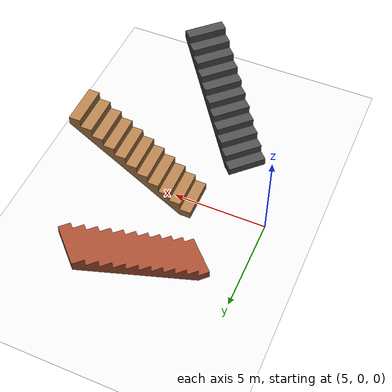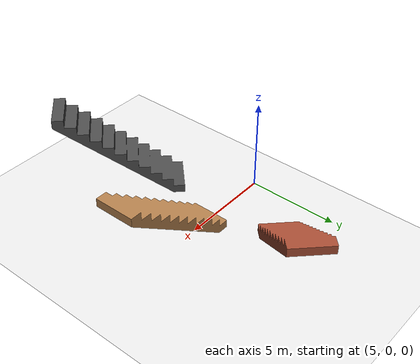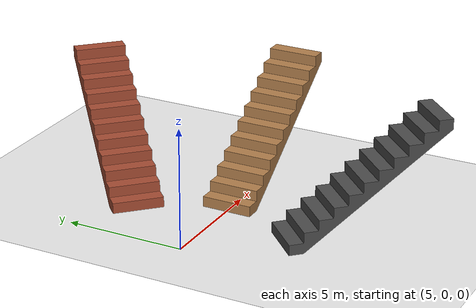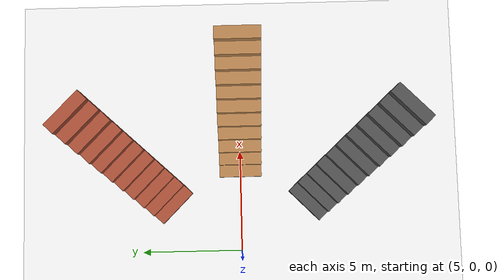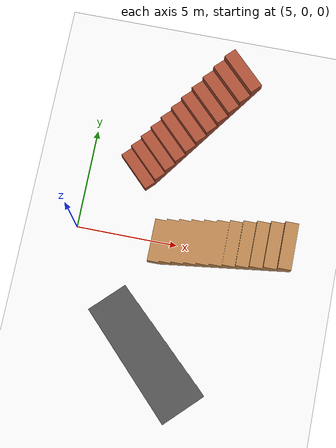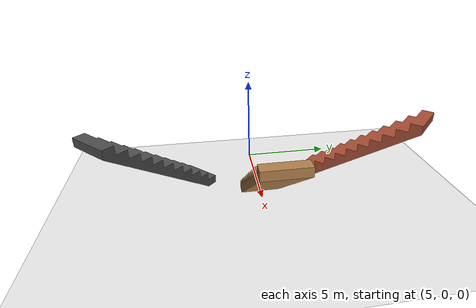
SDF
<sdf version="1.7">
 <world name="default">
  <model name="ground_plane">
   <static>1</static>
   <link name="link">
    <collision name="collision">
     <geometry><plane><normal>0 0 1</normal><size>100 100</size></plane></geometry>
     <surface>
      <contact><collide_bitmask>65535</collide_bitmask></contact>
      <friction><ode><mu>100</mu><mu2>50</mu2></ode></friction>
     </surface>
    </collision>
    <visual name="visual">
     <cast_shadows>0</cast_shadows>
     <geometry><plane><normal>0 0 1</normal><size>100 100</size></plane></geometry>
     <material>
      <script><uri>file://media/materials/scripts/gazebo.material</uri><name>Gazebo/White</name></script>
     </material>
    </visual>
   </link>
  </model>
  <light name="sun" type="directional">
   <pose>0 0 10 0 -0 0</pose>
   <diffuse>0.8 0.8 0.8 1</diffuse>
   <specular>0.2 0.2 0.2 1</specular>
   <attenuation>
    <range>1000</range>
    <constant>0.9</constant>
    <linear>0.01</linear>
    <quadratic>0.001</quadratic>
   </attenuation>
   <direction>-0.5 0.1 -0.9</direction>
   <spot><inner_angle>0</inner_angle><outer_angle>0</outer_angle><falloff>0</falloff></spot>
  </light>
  <gravity>0 0 0</gravity>
  <magnetic_field>6e-06 2.3e-05 -4.2e-05</magnetic_field>
  <atmosphere type="adiabatic"/>
  <physics type="ode">
   <max_step_size>0.001</max_step_size>
   <real_time_factor>1</real_time_factor>
   <real_time_update_rate>1000</real_time_update_rate>
  </physics>
  <scene><ambient>0.4 0.4 0.4 1</ambient><background>0.7 0.7 0.7 1</background><shadows>1</shadows></scene>
  <spherical_coordinates>
   <surface_model>EARTH_WGS84</surface_model>
   <latitude_deg>0</latitude_deg>
   <longitude_deg>0</longitude_deg>
   <elevation>0</elevation>
   <heading_deg>0</heading_deg>
  </spherical_coordinates>
  <model name="stairs1">
   <pose>12 0 0 0 -0 -1.5708</pose>
   <static>true</static>
   <link name="body">
    <visual name="visual">
     <pose>0 0 0 1.5708 0 0</pose>
     <geometry>
      <mesh>
       <uri>file:///home/maxim/lirs_summer_practise_ws/src/stairs_detection/camera_description/worlds/stairs.dae</uri>
      </mesh>
     </geometry>
     <material>
      <script><uri>file://media/materials/scripts/gazebo.material</uri><name>Gazebo/Wood</name></script>
     </material>
    </visual>
   </link>
  </model>
  <model name="stairs2">
   <pose>9.5 5.5 0 0 0 5.5</pose>
   <static>true</static>
   <link name="body">
    <visual name="visual">
     <pose>0 0 0 1.5708 0 0</pose>
     <geometry>
      <mesh>
       <uri>file:///home/maxim/lirs_summer_practise_ws/src/stairs_detection/camera_description/worlds/stairs.dae</uri>
      </mesh>
     </geometry>
     <material>
      <script><uri>file://media/materials/scripts/gazebo.material</uri><name>Gazebo/Bricks</name></script>
     </material>
    </visual>
   </link>
  </model>
  <model name="stairs3">
   <pose>9.5 -5.5 0 0 0 -2.36</pose>
   <static>true</static>
   <link name="body">
    <visual name="visual">
     <pose>0 0 0 1.5708 0 0</pose>
     <geometry>
      <mesh>
       <uri>file:///home/maxim/lirs_summer_practise_ws/src/stairs_detection/camera_description/worlds/stairs.dae</uri>
      </mesh>
     </geometry>
     <material>
      <script><uri>file://media/materials/scripts/gazebo.material</uri><name>Gazebo/Road</name></script>
     </material>
    </visual>
   </link>
  </model>
 </world>
</sdf>
